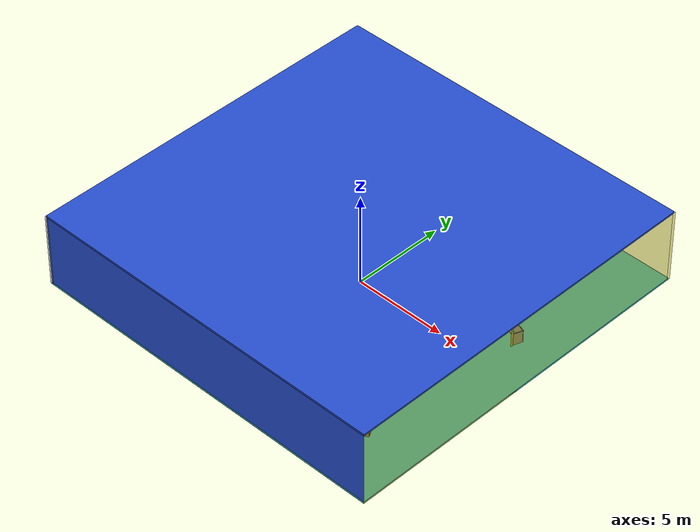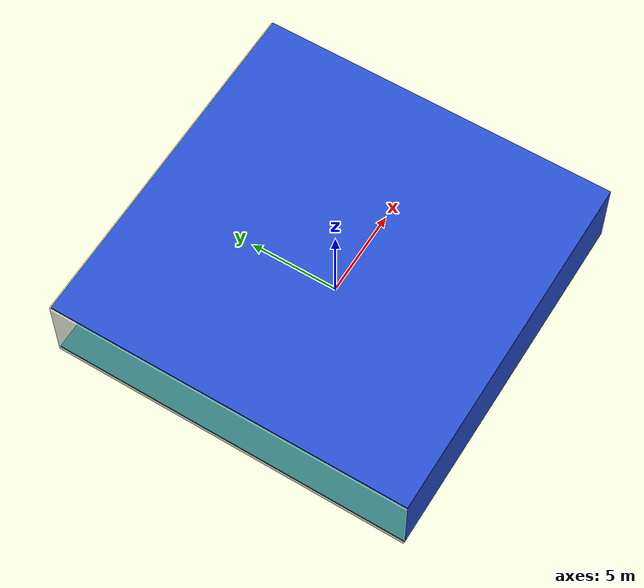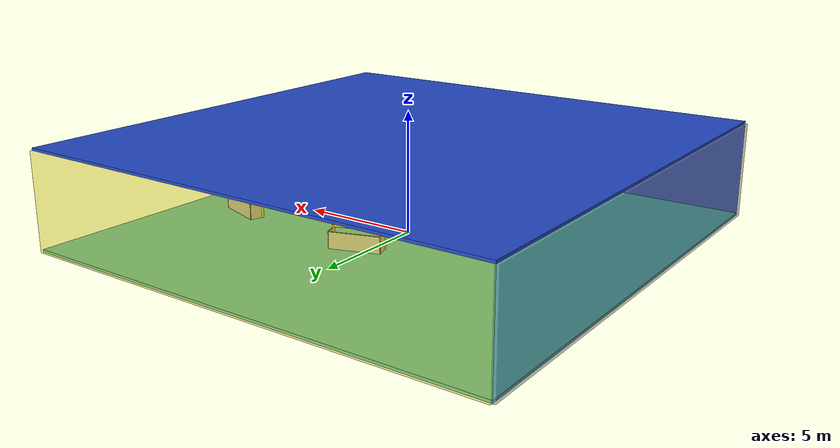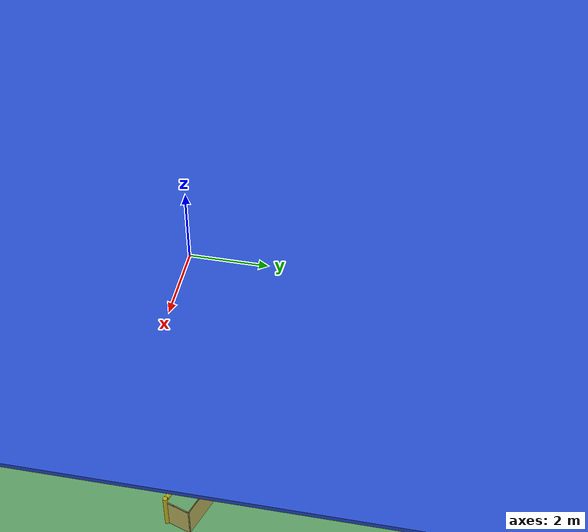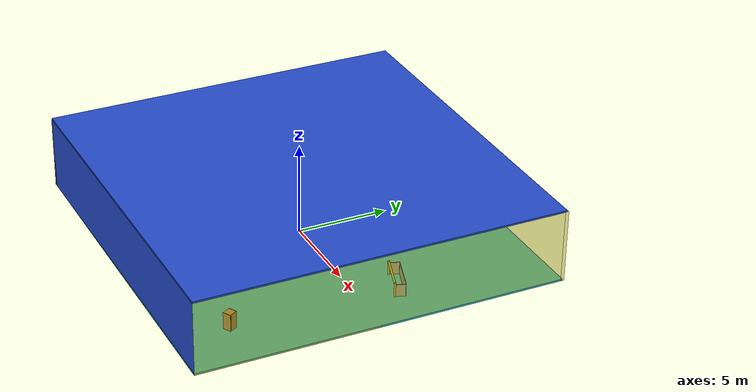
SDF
<sdf version="1.4">
 <world name="default">
  <physics type="ode">
   <max_step_size>0.001</max_step_size>
   <real_time_factor>1</real_time_factor>
   <real_time_update_rate>1000</real_time_update_rate>
   <gravity>0 0 -9.8</gravity>
  </physics>
  <scene><ambient>0.4 0.4 0.4 1</ambient><background>0.7 0.7 0.7 1</background><shadows>1</shadows></scene>
  <model name="Surrounding">
   <static>1</static>
   <link name="Ceiling">
    <collision name="Ceiling_Collision"><geometry><box><size>20 20 0.1</size></box></geometry></collision>
    <visual name="Ceiling_Visual">
     <geometry><box><size>20 20 0.1</size></box></geometry>
     <material>
      <script><uri>file://media/materials/scripts/gazebo.material</uri><name>Gazebo/BlueLaser</name></script>
     </material>
    </visual>
    <pose>0 0 4.05 0 0 0</pose>
   </link>
   <link name="Wall_South">
    <collision name="Wall_South_Collision">
     <geometry><box><size>20 0 4</size></box></geometry>
     <pose>0 0 2 0 -0 0</pose>
    </collision>
    <visual name="Wall_South_Visual">
     <pose>0 0 2 0 -0 0</pose>
     <geometry><box><size>20 0 4</size></box></geometry>
     <material>
      <script><uri>file://media/materials/scripts/gazebo.material</uri><name>Gazebo/Blue</name></script>
     </material>
    </visual>
    <velocity_decay><linear>0</linear><angular>0</angular></velocity_decay>
    <pose>0 -10 0 0 -0 0</pose>
   </link>
   <link name="Wall_East">
    <collision name="Wall_21_Collision">
     <geometry><box><size>20 0 4</size></box></geometry>
     <pose>0 0 2 0 -0 0</pose>
    </collision>
    <visual name="Wall_21_Visual">
     <pose>0 0 2 0 -0 0</pose>
     <geometry><box><size>20 0 4</size></box></geometry>
     <material>
      <script>
       <uri>file://media/materials/scripts/gazebo.material</uri>
       <name>Gazebo/YellowTransparent</name>
      </script>
     </material>
    </visual>
    <velocity_decay><linear>0</linear><angular>0</angular></velocity_decay>
    <pose>10 0 0 0 -0 1.5708</pose>
   </link>
   <link name="Wall_North">
    <collision name="Wall_22_Collision">
     <geometry><box><size>20 0.2 4</size></box></geometry>
     <pose>0 0 2 0 -0 0</pose>
    </collision>
    <visual name="Wall_22_Visual">
     <pose>0 0 2 0 -0 0</pose>
     <geometry><box><size>20 0.2 4</size></box></geometry>
     <material>
      <script>
       <uri>file://media/materials/scripts/gazebo.material</uri>
       <name>Gazebo/YellowTransparent</name>
      </script>
     </material>
    </visual>
    <velocity_decay><linear>0</linear><angular>0</angular></velocity_decay>
    <pose>0 10 0 0 -0 0</pose>
   </link>
   <link name="Wall_West">
    <collision name="Wall_23_Collision">
     <geometry><box><size>20 0.2 4</size></box></geometry>
     <pose>0 0 2 0 -0 0</pose>
    </collision>
    <visual name="Wall_23_Visual">
     <pose>0 0 2 0 -0 0</pose>
     <geometry><box><size>20 0.2 4</size></box></geometry>
     <material>
      <script><uri>file://media/materials/scripts/gazebo.material</uri><name>Gazebo/GreyTransparent</name></script>
     </material>
    </visual>
    <velocity_decay><linear>0</linear><angular>0</angular></velocity_decay>
    <pose>-10 0 0 0 0 -1.5708</pose>
   </link>
   <link name="Ground_link">
    <collision name="collision">
     <pose>0 0 .05 0 -0 0</pose>
     <geometry><box><size>20 20 0.1</size></box></geometry>
    </collision>
    <visual name="visual">
     <pose>0 0 .05 0 -0 0</pose>
     <geometry><box><size>20 20 0.1</size></box></geometry>
     <material>
      <script><uri>file://media/materials/scripts/gazebo.material</uri><name>Gazebo/Turquoise</name></script>
     </material>
    </visual>
   </link>
   <static>1</static>
  </model>
  <spherical_coordinates>
   <surface_model>EARTH_WGS84</surface_model>
   <latitude_deg>0</latitude_deg>
   <longitude_deg>0</longitude_deg>
   <elevation>0</elevation>
   <heading_deg>0</heading_deg>
  </spherical_coordinates>
  <light name="lightball_0" type="diffuse">
   <diffuse>0.8 0.8 0.8 1</diffuse>
   <specular>0.2 0.2 0.2 1</specular>
   <attenuation>
    <range>100</range>
    <constant>0.7</constant>
    <linear>0.01</linear>
    <quadratic>0.001</quadratic>
   </attenuation>
   <direction>-0.5 0.1 -0.9</direction>
   <pose>0.494311760323 -8.46780674339 1.25345466601 0 0 0</pose>
  </light>
  <light name="lightball_1" type="diffuse">
   <diffuse>0.8 0.8 0.8 1</diffuse>
   <specular>0.2 0.2 0.2 1</specular>
   <attenuation>
    <range>100</range>
    <constant>0.7</constant>
    <linear>0.01</linear>
    <quadratic>0.001</quadratic>
   </attenuation>
   <direction>-0.5 0.1 -0.9</direction>
   <pose>-0.832804910772 1.56573019869 3.31365072369 0 0 0</pose>
  </light>
  <light name="lightball_2" type="diffuse">
   <diffuse>0.8 0.8 0.8 1</diffuse>
   <specular>0.2 0.2 0.2 1</specular>
   <attenuation>
    <range>100</range>
    <constant>0.7</constant>
    <linear>0.01</linear>
    <quadratic>0.001</quadratic>
   </attenuation>
   <direction>-0.5 0.1 -0.9</direction>
   <pose>-9.02123524879 3.37005129532 0.754191557478 0 0 0</pose>
  </light>
  <light name="lightball_3" type="diffuse">
   <diffuse>0.8 0.8 0.8 1</diffuse>
   <specular>0.2 0.2 0.2 1</specular>
   <attenuation>
    <range>100</range>
    <constant>0.7</constant>
    <linear>0.01</linear>
    <quadratic>0.001</quadratic>
   </attenuation>
   <direction>-0.5 0.1 -0.9</direction>
   <pose>-0.593742142271 -4.6605588288 2.25579572602 0 0 0</pose>
  </light>
  <light name="lightball_4" type="diffuse">
   <diffuse>0.8 0.8 0.8 1</diffuse>
   <specular>0.2 0.2 0.2 1</specular>
   <attenuation>
    <range>100</range>
    <constant>0.7</constant>
    <linear>0.01</linear>
    <quadratic>0.001</quadratic>
   </attenuation>
   <direction>-0.5 0.1 -0.9</direction>
   <pose>4.53051089862 -3.63468185283 2.59731534943 0 0 0</pose>
  </light>
  <light name="lightball_5" type="diffuse">
   <diffuse>0.8 0.8 0.8 1</diffuse>
   <specular>0.2 0.2 0.2 1</specular>
   <attenuation>
    <range>100</range>
    <constant>0.7</constant>
    <linear>0.01</linear>
    <quadratic>0.001</quadratic>
   </attenuation>
   <direction>-0.5 0.1 -0.9</direction>
   <pose>-2.55280349041 9.11762339005 0.762117217127 0 0 0</pose>
  </light>
  <include><uri>model://table</uri><pose>2.39089323623 -2.18387933676 0 0 0 1.76373905602</pose></include>
  <include>
   <uri>model://robocup_3Dsim_goal</uri>
   <pose>0.413881618379 2.67780604643 0 0 0 1.88291180516</pose>
  </include>
  <include><uri>model://cabinet</uri><pose>3.5806199429 -6.89425935707 0 0 0 1.58598657634</pose></include>
  <include><uri>model://cabinet</uri><pose>7.0973603073 -6.9569919147 0 0 0 0.527096168542</pose></include>
  <include>
   <uri>model://robocup_3Dsim_goal</uri>
   <pose>6.93658105068 1.90786555969 0 0 0 1.25079011388</pose>
  </include>
 </world>
</sdf>

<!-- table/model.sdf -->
<sdf version="1.5">
  <model name="table">
    <static>true</static>
    <link name="link">
      <collision name="surface">
        <pose>0 0 1.0 0 0 0</pose>
        <geometry>
          <box>
            <size>1.5 0.8 0.03</size>
          </box>
        </geometry>
        <surface>
          <friction>
            <ode>
              <mu>0.6</mu>
              <mu2>0.6</mu2>
            </ode>
          </friction>
        </surface>
      </collision>
      <visual name="visual1">
        <pose>0 0 1.0 0 0 0</pose>
        <geometry>
          <box>
            <size>1.5 0.8 0.03</size>
          </box>
        </geometry>
        <material>
          <script>
            <uri>model://media/materials/scripts/gazebo.material</uri>
            <name>Gazebo/Wood</name>
          </script>
        </material>
      </visual>
      <collision name="front_left_leg">
        <pose>0.68 0.38 0.5 0 0 0</pose>
        <geometry>
          <cylinder>
            <radius>0.02</radius>
            <length>1.0</length>
          </cylinder>
        </geometry>
      </collision>
      <visual name="front_left_leg">
        <pose>0.68 0.38 0.5 0 0 0</pose>
        <geometry>
          <cylinder>
            <radius>0.02</radius>
            <length>1.0</length>
          </cylinder>
        </geometry>
        <material>
          <script>
            <uri>model://media/materials/scripts/gazebo.material</uri>
            <name>Gazebo/Grey</name>
          </script>
        </material>
      </visual>
      <collision name="front_right_leg">
        <pose>0.68 -0.38 0.5 0 0 0</pose>
        <geometry>
          <cylinder>
            <radius>0.02</radius>
            <length>1.0</length>
          </cylinder>
        </geometry>
      </collision>
      <visual name="front_right_leg">
        <pose>0.68 -0.38 0.5 0 0 0</pose>
        <geometry>
          <cylinder>
            <radius>0.02</radius>
            <length>1.0</length>
          </cylinder>
        </geometry>
        <material>
          <script>
            <uri>model://media/materials/scripts/gazebo.material</uri>
            <name>Gazebo/Grey</name>
          </script>
        </material>
      </visual>
      <collision name="back_right_leg">
        <pose>-0.68 -0.38 0.5 0 0 0</pose>
        <geometry>
          <cylinder>
            <radius>0.02</radius>
            <length>1.0</length>
          </cylinder>
        </geometry>
      </collision>
      <visual name="back_right_leg">
        <pose>-0.68 -0.38 0.5 0 0 0</pose>
        <geometry>
          <cylinder>
            <radius>0.02</radius>
            <length>1.0</length>
          </cylinder>
        </geometry>
        <material>
          <script>
            <uri>model://media/materials/scripts/gazebo.material</uri>
            <name>Gazebo/Grey</name>
          </script>
        </material>
      </visual>
      <collision name="back_left_leg">
        <pose>-0.68 0.38 0.5 0 0 0</pose>
        <geometry>
          <cylinder>
            <radius>0.02</radius>
            <length>1.0</length>
          </cylinder>
        </geometry>
      </collision>
      <visual name="back_left_leg">
        <pose>-0.68 0.38 0.5 0 0 0</pose>
        <geometry>
          <cylinder>
            <radius>0.02</radius>
            <length>1.0</length>
          </cylinder>
        </geometry>
        <material>
          <script>
            <uri>model://media/materials/scripts/gazebo.material</uri>
            <name>Gazebo/Grey</name>
          </script>
        </material>
      </visual>
    </link>
  </model>
</sdf>

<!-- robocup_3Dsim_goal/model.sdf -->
<sdf version="1.5">
  <model name="robocup_3d_goal">
    <static>true</static>
    <link name="left_post">
      <pose>0 1.05 0.45 0 0 0</pose>
      <collision name="collision">
        <geometry>
          <cylinder>
            <radius>0.05</radius>
            <length>0.9</length>
          </cylinder>
        </geometry>
      </collision>
      <visual name="visual">
        <geometry>
          <cylinder>
            <radius>0.05</radius>
            <length>0.9</length>
          </cylinder>
        </geometry>
        <material>
          <script>
            <uri>file://media/materials/scripts/gazebo.material</uri>
            <name>Gazebo/ZincYellow</name>
          </script>
        </material>
      </visual>
    </link>
    <link name="left_support_horiz_lower">
      <pose>0.30 1.05 0.01 0 0 0</pose>
      <collision name="collision">
        <geometry>
          <box>
            <size>0.50 0.02 0.02</size>
          </box>
        </geometry>
      </collision>
      <visual name="visual">
        <geometry>
          <box>
            <size>0.50 0.02 0.02</size>
          </box>
        </geometry>
        <material>
          <script>
            <uri>file://media/materials/scripts/gazebo.material</uri>
            <name>Gazebo/White</name>
          </script>
        </material>
      </visual>
    </link>
    <link name="left_support_horiz_upper">
      <pose>0.30 1.05 0.79 0 0 0</pose>
      <collision name="collision">
        <geometry>
          <box>
            <size>0.50 0.02 0.02</size>
          </box>
        </geometry>
      </collision>
      <visual name="visual">
        <geometry>
          <box>
            <size>0.50 0.02 0.02</size>
          </box>
        </geometry>
        <material>
          <script>
            <uri>file://media/materials/scripts/gazebo.material</uri>
            <name>Gazebo/White</name>
          </script>
        </material>
      </visual>
    </link>
    <link name="left_support_vertical">
      <pose>0.56 1.05 0.4 0 1.5708 0</pose>
      <collision name="collision">
        <geometry>
          <box>
            <size>0.80 0.02 0.02</size>
          </box>
        </geometry>
      </collision>
      <visual name="visual">
        <geometry>
          <box>
            <size>0.80 0.02 0.02</size>
          </box>
        </geometry>
        <material>
          <script>
            <uri>file://media/materials/scripts/gazebo.material</uri>
            <name>Gazebo/White</name>
          </script>
        </material>
      </visual>
    </link>
    <link name="right_support_horiz_lower">
      <pose>0.30 -1.05 0.01 0 0 0</pose>
      <collision name="collision">
        <geometry>
          <box>
            <size>0.50 0.02 0.02</size>
          </box>
        </geometry>
      </collision>
      <visual name="visual">
        <geometry>
          <box>
            <size>0.50 0.02 0.02</size>
          </box>
        </geometry>
        <material>
          <script>
            <uri>file://media/materials/scripts/gazebo.material</uri>
            <name>Gazebo/White</name>
          </script>
        </material>
      </visual>
    </link>
    <link name="right_support_horiz_upper">
      <pose>0.30 -1.05 0.79 0 0 0</pose>
      <collision name="collision">
        <geometry>
          <box>
            <size>0.50 0.02 0.02</size>
          </box>
        </geometry>
      </collision>
      <visual name="visual">
        <geometry>
          <box>
            <size>0.50 0.02 0.02</size>
          </box>
        </geometry>
        <material>
          <script>
            <uri>file://media/materials/scripts/gazebo.material</uri>
            <name>Gazebo/White</name>
          </script>
        </material>
      </visual>
    </link>
    <link name="right_support_vertical">
      <pose>0.56 -1.05 0.4 0 1.5708 0</pose>
      <collision name="collision">
        <geometry>
          <box>
            <size>0.80 0.02 0.02</size>
          </box>
        </geometry>
      </collision>
      <visual name="visual">
        <geometry>
          <box>
            <size>0.80 0.02 0.02</size>
          </box>
        </geometry>
        <material>
          <script>
            <uri>file://media/materials/scripts/gazebo.material</uri>
            <name>Gazebo/White</name>
          </script>
        </material>
      </visual>
    </link>
    <link name="center_support_horiz_lower">
      <pose>0.56 0 0.01 0 1.5708 0</pose>
      <collision name="collision">
        <geometry>
          <box>
            <size>0.02 2.08 0.02</size>
          </box>
        </geometry>
      </collision>
      <visual name="visual">
        <geometry>
          <box>
            <size>0.02 2.08 0.02</size>
          </box>
        </geometry>
        <material>
          <script>
            <uri>file://media/materials/scripts/gazebo.material</uri>
            <name>Gazebo/White</name>
          </script>
        </material>
      </visual>
    </link>
    <link name="center_support_horiz_upper">
      <pose>0.56 0 0.79 0 1.5708 0</pose>
      <collision name="collision">
        <geometry>
          <box>
            <size>0.02 2.08 0.02</size>
          </box>
        </geometry>
      </collision>
      <visual name="visual">
        <geometry>
          <box>
            <size>0.02 2.08 0.02</size>
          </box>
        </geometry>
        <material>
          <script>
            <uri>file://media/materials/scripts/gazebo.material</uri>
            <name>Gazebo/White</name>
          </script>
        </material>
      </visual>
    </link>
    <link name="right_post">
      <pose>0 -1.05 0.45 0 0 0</pose>
      <collision name="collision">
        <geometry>
          <cylinder>
            <radius>0.05</radius>
            <length>0.9</length>
          </cylinder>
        </geometry>
      </collision>
      <visual name="visual">
        <geometry>
          <cylinder>
            <radius>0.05</radius>
            <length>0.9</length>
          </cylinder>
        </geometry>
        <material>
          <script>
            <uri>file://media/materials/scripts/gazebo.material</uri>
            <name>Gazebo/ZincYellow</name>
          </script>
        </material>
      </visual>
    </link>
    <link name="crossbar">
      <pose>0 0 0.85 1.57 1.57 0</pose>
      <collision name="collision">
        <geometry>
          <cylinder>
            <radius>0.05</radius>
            <length>2.0</length>
          </cylinder>
        </geometry>
      </collision>
      <visual name="visual">
        <geometry>
          <cylinder>
            <radius>0.05</radius>
            <length>2.0</length>
          </cylinder>
        </geometry>
        <material>
          <script>
            <uri>file://media/materials/scripts/gazebo.material</uri>
            <name>Gazebo/ZincYellow</name>
          </script>
        </material>
      </visual>
    </link>
    <link name="center_net">
      <pose>0.56 0 0.40 0 0 0</pose>
      <collision name="collision">
        <geometry>
          <box>
            <size>0.01 2.1 0.80</size>
          </box>
        </geometry>
      </collision>
      <visual name="visual">
        <geometry>
          <box>
            <size>0.01 2.1 0.80</size>
          </box>
        </geometry>
        <material>
          <script>
            <uri>model://../model_source/models/robocup09_spl_field/materials/scripts/</uri>
            <uri>model://../model_source/models/robocup09_spl_field/materials/textures/</uri>
            <name>RoboCup/Net</name>
          </script>
        </material>
      </visual>
    </link>
    <link name="left_net">
      <pose>0.30 1.05 0.40 0 0 0</pose>
      <collision name="collision">
        <geometry>
          <box>
            <size>0.50 0.01 0.76</size>
          </box>
        </geometry>
      </collision>
      <visual name="visual">
        <geometry>
          <box>
            <size>0.50 0.01 0.76</size>
          </box>
        </geometry>
        <material>
          <script>
            <uri>model://../model_source/models/robocup09_spl_field/materials/scripts/</uri>
            <uri>model://../model_source/models/robocup09_spl_field/materials/textures/</uri>
            <name>RoboCup/Net</name>
          </script>
        </material>
      </visual>
    </link>
    <link name="right_net">
      <pose>0.30 -1.05 0.40 0 0 0</pose>
      <collision name="collision">
        <geometry>
          <box>
            <size>0.50 0.01 0.76</size>
          </box>
        </geometry>
      </collision>
      <visual name="visual">
        <geometry>
          <box>
            <size>0.50 0.01 0.76</size>
          </box>
        </geometry>
        <material>
          <script>
            <uri>model://../model_source/models/robocup09_spl_field/materials/scripts/</uri>
            <uri>model://../model_source/models/robocup09_spl_field/materials/textures/</uri>
            <name>RoboCup/Net</name>
          </script>
        </material>
      </visual>
    </link>
  </model>
</sdf>

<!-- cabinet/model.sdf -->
<sdf version="1.5">
  <model name="cabinet">
    <static>true</static>
    <link name="cabinet_bottom_plate">
      <inertial>
        <pose>0 0 -1 0 0 0</pose>
        <inertia>
          <ixx>2.050000</ixx>
          <ixy>0</ixy>
          <ixz>0</ixz>
          <iyy>2.050000</iyy>
          <iyz>0</iyz>
          <izz>2.050000</izz>
        </inertia>
        <mass>25.000000</mass>
      </inertial>
      <collision name="cabinet_bottom_plate_geom">
        <pose>0 0 0.010000 0 0 0</pose>
        <geometry>
          <box>
            <size>0.450000 0.450000 0.020000</size>
          </box>
        </geometry>
      </collision>
      <visual name="cabinet_bottom_plate_geom_visual">
        <pose>0 0 0.010000 0 0 0</pose>
        <geometry>
          <box>
            <size>0.450000 0.450000 0.020000</size>
          </box>
        </geometry>
        <material>
          <script>
            <uri>model://media/materials/scripts/gazebo.material</uri>
            <name>Gazebo/Wood</name>
          </script>
        </material>
      </visual>
      <collision name="cabinet_bottom_plate_geom_cabinet_back_plate">
        <pose>0.235000 0 0.510000 0 0 0</pose>
        <geometry>
          <box>
            <size>0.020000 0.450000 1.020000</size>
          </box>
        </geometry>
      </collision>
      <visual name="cabinet_bottom_plate_geom_cabinet_back_plate_visual">
        <pose>0.235000 0 0.510000 0 0 0</pose>
        <geometry>
          <box>
            <size>0.020000 0.450000 1.020000</size>
          </box>
        </geometry>
        <material>
          <script>
            <uri>model://media/materials/scripts/gazebo.material</uri>
            <name>Gazebo/Wood</name>
          </script>
        </material>
      </visual>
      <collision name="cabinet_bottom_plate_geom_cabinet_left_plate">
        <pose>0 0.235000 0.510000 0 0 0</pose>
        <geometry>
          <box>
            <size>0.450000 0.020000 1.020000</size>
          </box>
        </geometry>
      </collision>
      <visual name="cabinet_bottom_plate_geom_cabinet_left_plate_visual">
        <pose>0 0.235000 0.510000 0 0 0</pose>
        <geometry>
          <box>
            <size>0.450000 0.020000 1.020000</size>
          </box>
        </geometry>
        <material>
          <script>
            <uri>model://media/materials/scripts/gazebo.material</uri>
            <name>Gazebo/Wood</name>
          </script>
        </material>
      </visual>
      <collision name="cabinet_bottom_plate_geom_cabinet_middle_plate">
        <pose>0 0 0.510000 0 0 0</pose>
        <geometry>
          <box>
            <size>0.450000 0.450000 0.020000</size>
          </box>
        </geometry>
      </collision>
      <visual name="cabinet_bottom_plate_geom_cabinet_middle_plate_visual">
        <pose>0 0 0.510000 0 0 0</pose>
        <geometry>
          <box>
            <size>0.450000 0.450000 0.020000</size>
          </box>
        </geometry>
        <material>
          <script>
            <uri>model://media/materials/scripts/gazebo.material</uri>
            <name>Gazebo/Wood</name>
          </script>
        </material>
      </visual>
      <collision name="cabinet_bottom_plate_geom_cabinet_right_plate">
        <pose>0 -0.235000 0.510000 0 0 0</pose>
        <geometry>
          <box>
            <size>0.450000 0.020000 1.020000</size>
          </box>
        </geometry>
      </collision>
      <visual name="cabinet_bottom_plate_geom_cabinet_right_plate_visual">
        <pose>0 -0.235000 0.510000 0 0 0</pose>
        <geometry>
          <box>
            <size>0.450000 0.020000 1.020000</size>
          </box>
        </geometry>
        <material>
          <script>
            <uri>model://media/materials/scripts/gazebo.material</uri>
            <name>Gazebo/Wood</name>
          </script>
        </material>
      </visual>
      <collision name="cabinet_bottom_plate_geom_cabinet_top_plate">
        <pose>0 0 1.010000 0 0 0</pose>
        <geometry>
          <box>
            <size>0.450000 0.450000 0.020000</size>
          </box>
        </geometry>
      </collision>
      <visual name="cabinet_bottom_plate_geom_cabinet_top_plate_visual">
        <pose>0 0 1.010000 0 0 0</pose>
        <geometry>
          <box>
            <size>0.450000 0.450000 0.020000</size>
          </box>
        </geometry>
        <material>
          <script>
            <uri>model://media/materials/scripts/gazebo.material</uri>
            <name>Gazebo/Wood</name>
          </script>
        </material>
      </visual>
    </link>
  </model>
</sdf>
